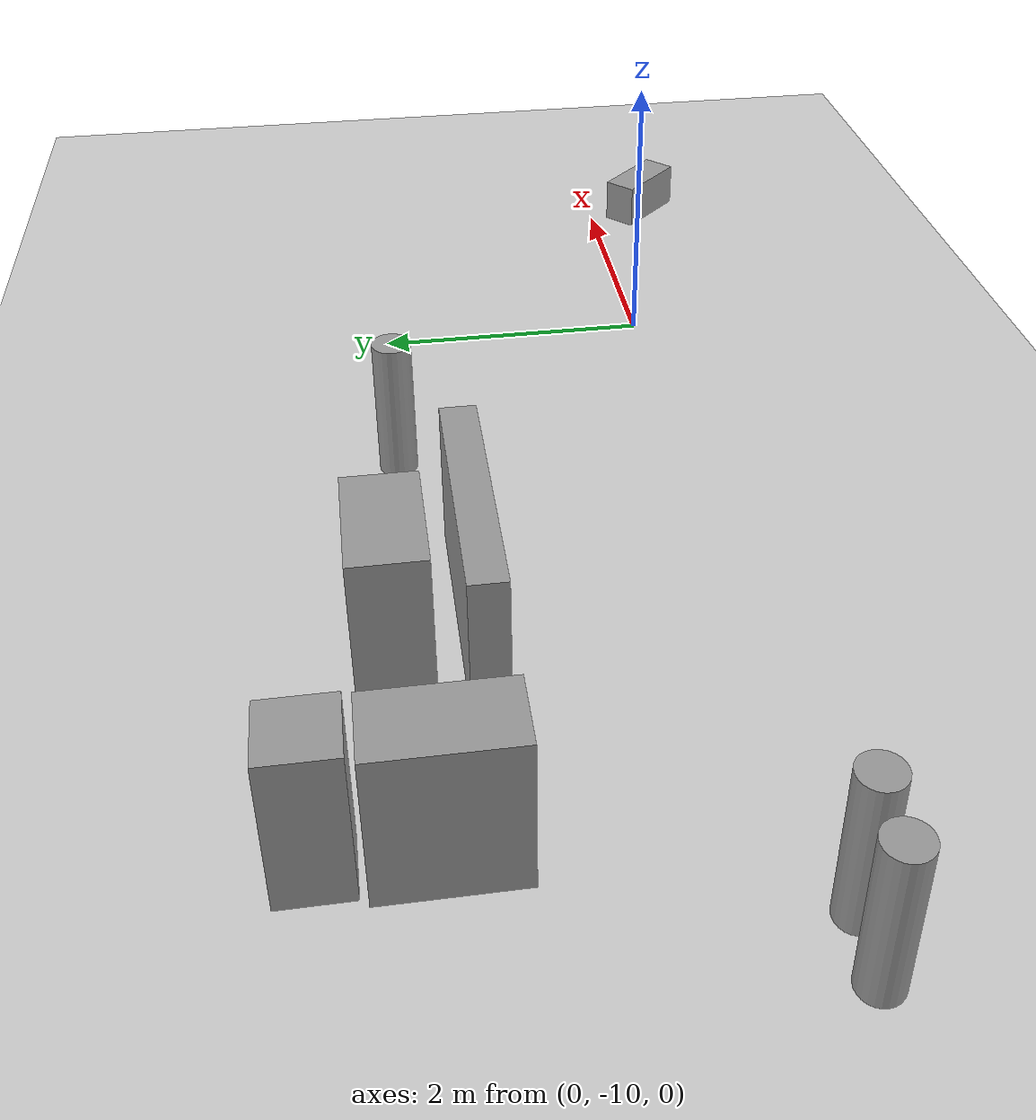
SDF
<sdf version="1.6">
 <world name="default">
  <model name="ground_plane">
   <static>1</static>
   <link name="link">
    <collision name="collision">
     <geometry><plane><normal>0 0 1</normal><size>100 100</size></plane></geometry>
     <surface><friction><ode><mu>100</mu><mu2>50</mu2></ode></friction></surface>
    </collision>
    <visual name="visual">
     <cast_shadows>0</cast_shadows>
     <geometry><plane><normal>0 0 1</normal><size>100 100</size></plane></geometry>
     <material>
      <script><uri>file://media/materials/scripts/gazebo.material</uri><name>Gazebo/Grey</name></script>
     </material>
    </visual>
   </link>
  </model>
  <model name="cma_armario_s_0">
   <link name="link_1">
    <pose>-2e-06 -3e-06 0 0 -0 0</pose>
    <inertial>
     <mass>0.390159</mass>
     <inertia>
      <ixx>0.039647</ixx>
      <ixy>0</ixy>
      <ixz>0</ixz>
      <iyy>0.0550708</iyy>
      <iyz>0</iyz>
      <izz>0.0296912</izz>
     </inertia>
    </inertial>
    <visual name="visual">
     <geometry><box><size>0.832942 0.468397 1</size></box></geometry>
     <material>
      <lighting>1</lighting>
      <script><uri>file://media/materials/scripts/gazebo.material</uri><name>Gazebo/Grey</name></script>
      <ambient>0.3 0.3 0.3 1</ambient>
      <diffuse>0.7 0.7 0.7 1</diffuse>
      <specular>0.01 0.01 0.01 1</specular>
      <emissive>0 0 0 1</emissive>
     </material>
    </visual>
    <collision name="collision">
     <geometry><box><size>0.832942 0.468397 1</size></box></geometry>
     <surface>
      <friction>
       <ode><mu>1</mu><mu2>1</mu2><fdir1>0 0 0</fdir1><slip1>0</slip1><slip2>0</slip2></ode>
       <torsional>
        <coefficient>1</coefficient>
        <patch_radius>0</patch_radius>
        <surface_radius>0</surface_radius>
        <use_patch_radius>1</use_patch_radius>
        <ode><slip>0</slip></ode>
       </torsional>
      </friction>
      <bounce><restitution_coefficient>0</restitution_coefficient><threshold>1e+06</threshold></bounce>
      <contact>
       <collide_without_contact>0</collide_without_contact>
       <collide_without_contact_bitmask>1</collide_without_contact_bitmask>
       <collide_bitmask>1</collide_bitmask>
       <ode>
        <soft_cfm>0</soft_cfm>
        <soft_erp>0.2</soft_erp>
        <kp>1e+13</kp>
        <kd>1</kd>
        <max_vel>0.01</max_vel>
        <min_depth>0</min_depth>
       </ode>
       <bullet>
        <split_impulse>1</split_impulse>
        <split_impulse_penetration_threshold>-0.01</split_impulse_penetration_threshold>
        <soft_cfm>0</soft_cfm>
        <soft_erp>0.2</soft_erp>
        <kp>1e+13</kp>
        <kd>1</kd>
       </bullet>
      </contact>
     </surface>
    </collision>
   </link>
   <static>0</static>
   <pose>-5.16842 -8.01552 0.5 0 0 -1.57492</pose>
  </model>
  <model name="cma_gaveteiro_pequeno_2">
   <link name="link_0">
    <pose>0.256174 1.25055 0.5 0 -0 0</pose>
    <inertial>
     <mass>0.187186</mass>
     <inertia>
      <ixx>0.01851</ixx>
      <ixy>0</ixy>
      <ixz>0</ixz>
      <iyy>0.0185276</iyy>
      <iyz>0</iyz>
      <izz>0.00583981</izz>
     </inertia>
    </inertial>
    <visual name="visual">
     <geometry><box><size>0.433317 0.432002 1</size></box></geometry>
     <material>
      <lighting>1</lighting>
      <script><uri>file://media/materials/scripts/gazebo.material</uri><name>Gazebo/Grey</name></script>
      <ambient>0.3 0.3 0.3 1</ambient>
      <diffuse>0.7 0.7 0.7 1</diffuse>
      <specular>0.01 0.01 0.01 1</specular>
      <emissive>0 0 0 1</emissive>
     </material>
    </visual>
    <collision name="collision">
     <geometry><box><size>0.433317 0.432002 1</size></box></geometry>
     <surface>
      <friction>
       <ode><mu>1</mu><mu2>1</mu2><fdir1>0 0 0</fdir1><slip1>0</slip1><slip2>0</slip2></ode>
       <torsional>
        <coefficient>1</coefficient>
        <patch_radius>0</patch_radius>
        <surface_radius>0</surface_radius>
        <use_patch_radius>1</use_patch_radius>
        <ode><slip>0</slip></ode>
       </torsional>
      </friction>
      <bounce><restitution_coefficient>0</restitution_coefficient><threshold>1e+06</threshold></bounce>
      <contact>
       <collide_without_contact>0</collide_without_contact>
       <collide_without_contact_bitmask>1</collide_without_contact_bitmask>
       <collide_bitmask>1</collide_bitmask>
       <ode>
        <soft_cfm>0</soft_cfm>
        <soft_erp>0.2</soft_erp>
        <kp>1e+13</kp>
        <kd>1</kd>
        <max_vel>0.01</max_vel>
        <min_depth>0</min_depth>
       </ode>
       <bullet>
        <split_impulse>1</split_impulse>
        <split_impulse_penetration_threshold>-0.01</split_impulse_penetration_threshold>
        <soft_cfm>0</soft_cfm>
        <soft_erp>0.2</soft_erp>
        <kp>1e+13</kp>
        <kd>1</kd>
       </bullet>
      </contact>
     </surface>
    </collision>
   </link>
   <static>0</static>
   <pose>-5.39175 -8.5855 3e-06 -2e-06 -1e-06 -0.000135</pose>
  </model>
  <model name="cma_armario_s_1">
   <link name="link_1">
    <pose>-2e-06 -3e-06 0 0 -0 0</pose>
    <inertial>
     <mass>0.390159</mass>
     <inertia>
      <ixx>0.039647</ixx>
      <ixy>0</ixy>
      <ixz>0</ixz>
      <iyy>0.0550708</iyy>
      <iyz>0</iyz>
      <izz>0.0296912</izz>
     </inertia>
    </inertial>
    <visual name="visual">
     <geometry><box><size>0.832942 0.468397 1</size></box></geometry>
     <material>
      <lighting>1</lighting>
      <script><uri>file://media/materials/scripts/gazebo.material</uri><name>Gazebo/Grey</name></script>
      <ambient>0.3 0.3 0.3 1</ambient>
      <diffuse>0.7 0.7 0.7 1</diffuse>
      <specular>0.01 0.01 0.01 1</specular>
      <emissive>0 0 0 1</emissive>
     </material>
    </visual>
    <collision name="collision">
     <geometry><box><size>0.832942 0.468397 1</size></box></geometry>
     <surface>
      <friction>
       <ode><mu>1</mu><mu2>1</mu2><fdir1>0 0 0</fdir1><slip1>0</slip1><slip2>0</slip2></ode>
       <torsional>
        <coefficient>1</coefficient>
        <patch_radius>0</patch_radius>
        <surface_radius>0</surface_radius>
        <use_patch_radius>1</use_patch_radius>
        <ode><slip>0</slip></ode>
       </torsional>
      </friction>
      <bounce><restitution_coefficient>0</restitution_coefficient><threshold>1e+06</threshold></bounce>
      <contact>
       <collide_without_contact>0</collide_without_contact>
       <collide_without_contact_bitmask>1</collide_without_contact_bitmask>
       <collide_bitmask>1</collide_bitmask>
       <ode>
        <soft_cfm>0</soft_cfm>
        <soft_erp>0.2</soft_erp>
        <kp>1e+13</kp>
        <kd>1</kd>
        <max_vel>0.01</max_vel>
        <min_depth>0</min_depth>
       </ode>
       <bullet>
        <split_impulse>1</split_impulse>
        <split_impulse_penetration_threshold>-0.01</split_impulse_penetration_threshold>
        <soft_cfm>0</soft_cfm>
        <soft_erp>0.2</soft_erp>
        <kp>1e+13</kp>
        <kd>1</kd>
       </bullet>
      </contact>
     </surface>
    </collision>
   </link>
   <static>0</static>
   <pose>-3.5795 -7.82365 0.5 0 -0 0.000277</pose>
  </model>
  <model name="cma_armario_1">
   <link name="link_0">
    <pose>1.32157 0.885178 0.5 0 -0 0</pose>
    <inertial>
     <mass>0.402376</mass>
     <inertia>
      <ixx>0.0353686</ixx>
      <ixy>0</ixy>
      <ixz>0</ixz>
      <iyy>0.132616</iyy>
      <iyz>0</iyz>
      <izz>0.100922</izz>
     </inertia>
    </inertial>
    <visual name="visual">
     <geometry><box><size>1.71877 0.234069 1</size></box></geometry>
     <material>
      <lighting>1</lighting>
      <script><uri>file://media/materials/scripts/gazebo.material</uri><name>Gazebo/Grey</name></script>
      <ambient>0.3 0.3 0.3 1</ambient>
      <diffuse>0.7 0.7 0.7 1</diffuse>
      <specular>0.01 0.01 0.01 1</specular>
      <emissive>0 0 0 1</emissive>
     </material>
    </visual>
    <collision name="collision">
     <geometry><box><size>1.71877 0.234069 1</size></box></geometry>
     <surface>
      <friction>
       <ode><mu>1</mu><mu2>1</mu2><fdir1>0 0 0</fdir1><slip1>0</slip1><slip2>0</slip2></ode>
       <torsional>
        <coefficient>1</coefficient>
        <patch_radius>0</patch_radius>
        <surface_radius>0</surface_radius>
        <use_patch_radius>1</use_patch_radius>
        <ode><slip>0</slip></ode>
       </torsional>
      </friction>
      <bounce><restitution_coefficient>0</restitution_coefficient><threshold>1e+06</threshold></bounce>
      <contact>
       <collide_without_contact>0</collide_without_contact>
       <collide_without_contact_bitmask>1</collide_without_contact_bitmask>
       <collide_bitmask>1</collide_bitmask>
       <ode>
        <soft_cfm>0</soft_cfm>
        <soft_erp>0.2</soft_erp>
        <kp>1e+13</kp>
        <kd>1</kd>
        <max_vel>0.01</max_vel>
        <min_depth>0</min_depth>
       </ode>
       <bullet>
        <split_impulse>1</split_impulse>
        <split_impulse_penetration_threshold>-0.01</split_impulse_penetration_threshold>
        <soft_cfm>0</soft_cfm>
        <soft_erp>0.2</soft_erp>
        <kp>1e+13</kp>
        <kd>1</kd>
       </bullet>
      </contact>
     </surface>
    </collision>
   </link>
   <static>0</static>
   <pose>-4.70089 -9.22642 1e-06 -2e-06 -0 -0.00221</pose>
  </model>
  <model name="cma_lixo_1">
   <link name="link_1">
    <pose>0.882962 1.81586 0.5 0 -0 0</pose>
    <inertial>
     <mass>0.0687644</mass>
     <inertia>
      <ixx>0.00602588</ixx>
      <ixy>0</ixy>
      <ixz>0</ixz>
      <iyy>0.00602588</iyy>
      <iyz>0</iyz>
      <izz>0.000591068</izz>
     </inertia>
    </inertial>
    <visual name="visual">
     <geometry><cylinder><radius>0.131112</radius><length>1</length></cylinder></geometry>
     <material>
      <lighting>1</lighting>
      <script><uri>file://media/materials/scripts/gazebo.material</uri><name>Gazebo/Grey</name></script>
      <ambient>0.3 0.3 0.3 1</ambient>
      <diffuse>0.7 0.7 0.7 1</diffuse>
      <specular>0.01 0.01 0.01 1</specular>
      <emissive>0 0 0 1</emissive>
     </material>
    </visual>
    <collision name="collision">
     <geometry><cylinder><radius>0.131112</radius><length>1</length></cylinder></geometry>
     <surface>
      <friction>
       <ode><mu>1</mu><mu2>1</mu2><fdir1>0 0 0</fdir1><slip1>0</slip1><slip2>0</slip2></ode>
       <torsional>
        <coefficient>1</coefficient>
        <patch_radius>0</patch_radius>
        <surface_radius>0</surface_radius>
        <use_patch_radius>1</use_patch_radius>
        <ode><slip>0</slip></ode>
       </torsional>
      </friction>
      <bounce><restitution_coefficient>0</restitution_coefficient><threshold>1e+06</threshold></bounce>
      <contact>
       <collide_without_contact>0</collide_without_contact>
       <collide_without_contact_bitmask>1</collide_without_contact_bitmask>
       <collide_bitmask>1</collide_bitmask>
       <ode>
        <soft_cfm>0</soft_cfm>
        <soft_erp>0.2</soft_erp>
        <kp>1e+13</kp>
        <kd>1</kd>
        <max_vel>0.01</max_vel>
        <min_depth>0</min_depth>
       </ode>
       <bullet>
        <split_impulse>1</split_impulse>
        <split_impulse_penetration_threshold>-0.01</split_impulse_penetration_threshold>
        <soft_cfm>0</soft_cfm>
        <soft_erp>0.2</soft_erp>
        <kp>1e+13</kp>
        <kd>1</kd>
       </bullet>
      </contact>
     </surface>
    </collision>
   </link>
   <static>0</static>
   <pose>-2.57103 -9.7975 -3e-06 0 -0 0</pose>
  </model>
  <model name="cma_barra_70cmD">
   <link name="link_2">
    <pose>3.79375 1.34046 0.5 0 0 -0.803534</pose>
    <inertial>
     <mass>0.0631368</mass>
     <inertia>
      <ixx>0.00106542</ixx>
      <ixy>0</ixy>
      <ixz>0</ixz>
      <iyy>0.00284727</iyy>
      <iyz>0</iyz>
      <izz>0.0025815</izz>
     </inertia>
    </inertial>
    <visual name="visual">
     <geometry><box><size>0.643938 0.275728 0.355737</size></box></geometry>
     <material>
      <lighting>1</lighting>
      <script><uri>file://media/materials/scripts/gazebo.material</uri><name>Gazebo/Grey</name></script>
      <ambient>0.3 0.3 0.3 1</ambient>
      <diffuse>0.7 0.7 0.7 1</diffuse>
      <specular>0.01 0.01 0.01 1</specular>
      <emissive>0 0 0 1</emissive>
     </material>
    </visual>
    <collision name="collision">
     <geometry><box><size>0.643938 0.275728 0.355737</size></box></geometry>
     <surface>
      <friction>
       <ode><mu>1</mu><mu2>1</mu2><fdir1>0 0 0</fdir1><slip1>0</slip1><slip2>0</slip2></ode>
       <torsional>
        <coefficient>1</coefficient>
        <patch_radius>0</patch_radius>
        <surface_radius>0</surface_radius>
        <use_patch_radius>1</use_patch_radius>
        <ode><slip>0</slip></ode>
       </torsional>
      </friction>
      <bounce><restitution_coefficient>0</restitution_coefficient><threshold>1e+06</threshold></bounce>
      <contact>
       <collide_without_contact>0</collide_without_contact>
       <collide_without_contact_bitmask>1</collide_without_contact_bitmask>
       <collide_bitmask>1</collide_bitmask>
       <ode>
        <soft_cfm>0</soft_cfm>
        <soft_erp>0.2</soft_erp>
        <kp>1e+13</kp>
        <kd>1</kd>
        <max_vel>0.01</max_vel>
        <min_depth>0</min_depth>
       </ode>
       <bullet>
        <split_impulse>1</split_impulse>
        <split_impulse_penetration_threshold>-0.01</split_impulse_penetration_threshold>
        <soft_cfm>0</soft_cfm>
        <soft_erp>0.2</soft_erp>
        <kp>1e+13</kp>
        <kd>1</kd>
       </bullet>
      </contact>
     </surface>
    </collision>
   </link>
   <static>0</static>
   <pose>-1.65229 -11.8299 -0.322188 5e-06 -1.2e-05 0.003977</pose>
  </model>
  <model name="cma_lixo_7">
   <link name="link_1">
    <pose>0.882962 1.81586 0.5 0 -0 0</pose>
    <inertial>
     <mass>0.0687644</mass>
     <inertia>
      <ixx>0.00602588</ixx>
      <ixy>0</ixy>
      <ixz>0</ixz>
      <iyy>0.00602588</iyy>
      <iyz>0</iyz>
      <izz>0.000591068</izz>
     </inertia>
    </inertial>
    <visual name="visual">
     <geometry><cylinder><radius>0.131112</radius><length>1</length></cylinder></geometry>
     <material>
      <lighting>1</lighting>
      <script><uri>file://media/materials/scripts/gazebo.material</uri><name>Gazebo/Grey</name></script>
      <ambient>0.3 0.3 0.3 1</ambient>
      <diffuse>0.7 0.7 0.7 1</diffuse>
      <specular>0.01 0.01 0.01 1</specular>
      <emissive>0 0 0 1</emissive>
     </material>
    </visual>
    <collision name="collision">
     <geometry><cylinder><radius>0.131112</radius><length>1</length></cylinder></geometry>
     <surface>
      <friction>
       <ode><mu>1</mu><mu2>1</mu2><fdir1>0 0 0</fdir1><slip1>0</slip1><slip2>0</slip2></ode>
       <torsional>
        <coefficient>1</coefficient>
        <patch_radius>0</patch_radius>
        <surface_radius>0</surface_radius>
        <use_patch_radius>1</use_patch_radius>
        <ode><slip>0</slip></ode>
       </torsional>
      </friction>
      <bounce><restitution_coefficient>0</restitution_coefficient><threshold>1e+06</threshold></bounce>
      <contact>
       <collide_without_contact>0</collide_without_contact>
       <collide_without_contact_bitmask>1</collide_without_contact_bitmask>
       <collide_bitmask>1</collide_bitmask>
       <ode>
        <soft_cfm>0</soft_cfm>
        <soft_erp>0.2</soft_erp>
        <kp>1e+13</kp>
        <kd>1</kd>
        <max_vel>0.01</max_vel>
        <min_depth>0</min_depth>
       </ode>
       <bullet>
        <split_impulse>1</split_impulse>
        <split_impulse_penetration_threshold>-0.01</split_impulse_penetration_threshold>
        <soft_cfm>0</soft_cfm>
        <soft_erp>0.2</soft_erp>
        <kp>1e+13</kp>
        <kd>1</kd>
       </bullet>
      </contact>
     </surface>
    </collision>
   </link>
   <static>0</static>
   <pose>-7.0699 -11.7463 -7e-06 0 -0 0</pose>
  </model>
  <model name="cma_lixo_8">
   <link name="link_1">
    <pose>0.882962 1.81586 0.5 0 -0 0</pose>
    <inertial>
     <mass>0.0687644</mass>
     <inertia>
      <ixx>0.00602588</ixx>
      <ixy>0</ixy>
      <ixz>0</ixz>
      <iyy>0.00602588</iyy>
      <iyz>0</iyz>
      <izz>0.000591068</izz>
     </inertia>
    </inertial>
    <visual name="visual">
     <geometry><cylinder><radius>0.131112</radius><length>1</length></cylinder></geometry>
     <material>
      <lighting>1</lighting>
      <script><uri>file://media/materials/scripts/gazebo.material</uri><name>Gazebo/Grey</name></script>
      <ambient>0.3 0.3 0.3 1</ambient>
      <diffuse>0.7 0.7 0.7 1</diffuse>
      <specular>0.01 0.01 0.01 1</specular>
      <emissive>0 0 0 1</emissive>
     </material>
    </visual>
    <collision name="collision">
     <geometry><cylinder><radius>0.131112</radius><length>1</length></cylinder></geometry>
     <surface>
      <friction>
       <ode><mu>1</mu><mu2>1</mu2><fdir1>0 0 0</fdir1><slip1>0</slip1><slip2>0</slip2></ode>
       <torsional>
        <coefficient>1</coefficient>
        <patch_radius>0</patch_radius>
        <surface_radius>0</surface_radius>
        <use_patch_radius>1</use_patch_radius>
        <ode><slip>0</slip></ode>
       </torsional>
      </friction>
      <bounce><restitution_coefficient>0</restitution_coefficient><threshold>1e+06</threshold></bounce>
      <contact>
       <collide_without_contact>0</collide_without_contact>
       <collide_without_contact_bitmask>1</collide_without_contact_bitmask>
       <collide_bitmask>1</collide_bitmask>
       <ode>
        <soft_cfm>0</soft_cfm>
        <soft_erp>0.2</soft_erp>
        <kp>1e+13</kp>
        <kd>1</kd>
        <max_vel>0.01</max_vel>
        <min_depth>0</min_depth>
       </ode>
       <bullet>
        <split_impulse>1</split_impulse>
        <split_impulse_penetration_threshold>-0.01</split_impulse_penetration_threshold>
        <soft_cfm>0</soft_cfm>
        <soft_erp>0.2</soft_erp>
        <kp>1e+13</kp>
        <kd>1</kd>
       </bullet>
      </contact>
     </surface>
    </collision>
   </link>
   <static>0</static>
   <pose>-6.67641 -11.7667 -7e-06 0 -0 0</pose>
  </model>
 </world>
</sdf>
